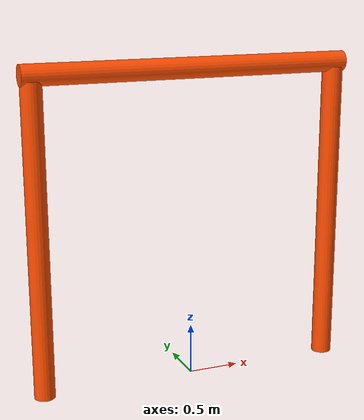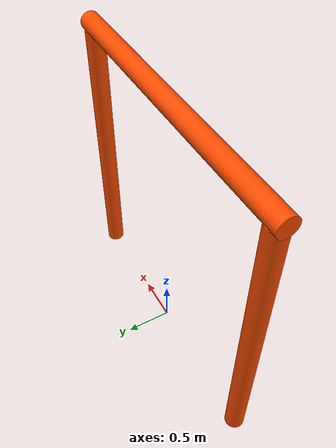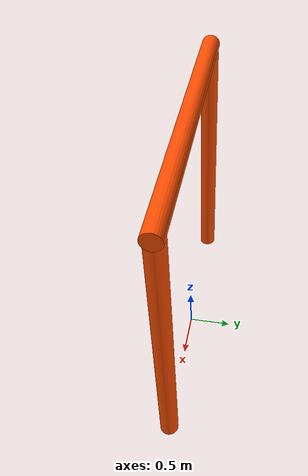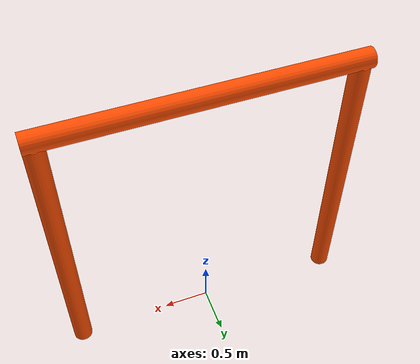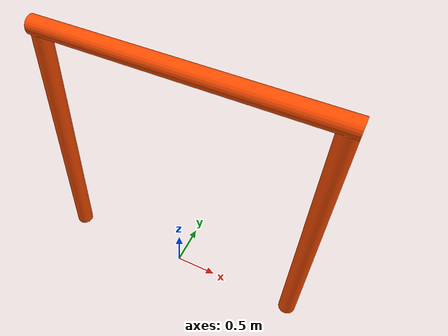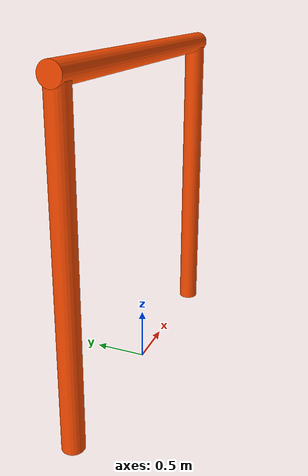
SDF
<?xml version="1.0" ?>
<sdf version="1.9">
  <model name="racing_gate">
    <!-- Set to true so the gate doesn't fall over from wind or physics -->
    <static>true</static>

    <!-- Left Pillar -->
    <link name="left_pillar">
      <pose>-1.5 0 1.5 0 0 0</pose>
      <visual name="left_pillar_visual">
        <geometry>
          <cylinder>
            <radius>0.1</radius>
            <length>3.0</length>
          </cylinder>
        </geometry>
        <material>
          <ambient>1 0.3 0 1</ambient> <!-- Neon Orange -->
          <diffuse>1 0.3 0 1</diffuse>
        </material>
      </visual>
      <collision name="left_pillar_collision">
        <geometry>
          <cylinder>
            <radius>0.1</radius>
            <length>3.0</length>
          </cylinder>
        </geometry>
      </collision>
    </link>

    <!-- Right Pillar -->
    <link name="right_pillar">
      <pose>1.5 0 1.5 0 0 0</pose>
      <visual name="right_pillar_visual">
        <geometry>
          <cylinder>
            <radius>0.1</radius>
            <length>3.0</length>
          </cylinder>
        </geometry>
        <material>
          <ambient>1 0.3 0 1</ambient>
          <diffuse>1 0.3 0 1</diffuse>
        </material>
      </visual>
      <collision name="right_pillar_collision">
        <geometry>
          <cylinder>
            <radius>0.1</radius>
            <length>3.0</length>
          </cylinder>
        </geometry>
      </collision>
    </link>

    <!-- Top Bar -->
    <link name="top_bar">
      <pose>0 0 3.05 0 1.5708 0</pose> <!-- Rotated 90 degrees (1.57 rad) to lie flat -->
      <visual name="top_bar_visual">
        <geometry>
          <cylinder>
            <radius>0.1</radius>
            <length>3.2</length>
          </cylinder>
        </geometry>
        <material>
          <ambient>1 0.3 0 1</ambient>
          <diffuse>1 0.3 0 1</diffuse>
        </material>
      </visual>
      <collision name="top_bar_collision">
        <geometry>
          <cylinder>
            <radius>0.1</radius>
            <length>3.2</length>
          </cylinder>
        </geometry>
      </collision>
    </link>
  </model>
</sdf>
